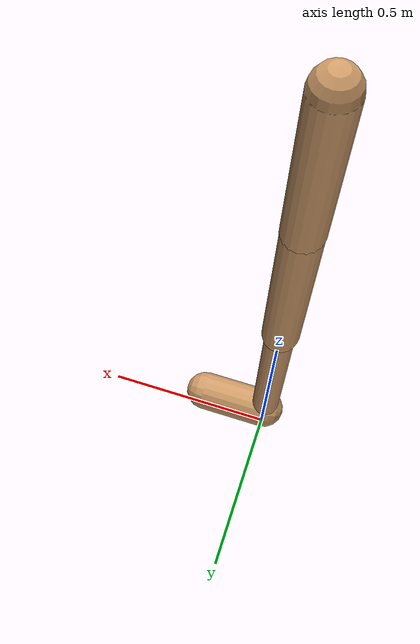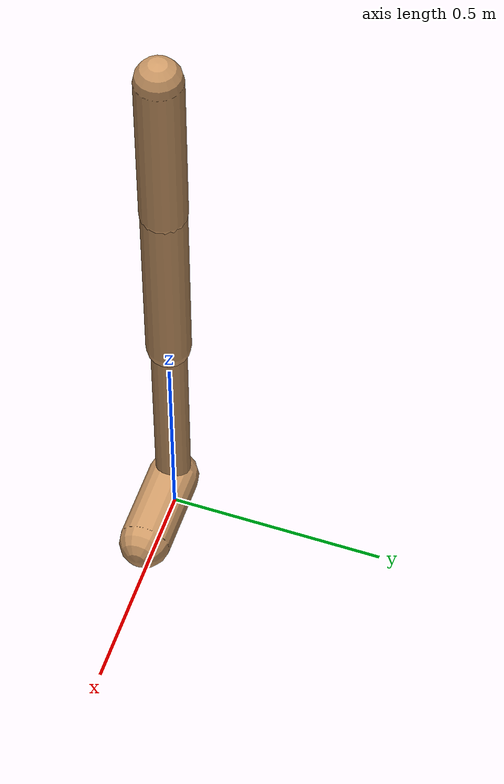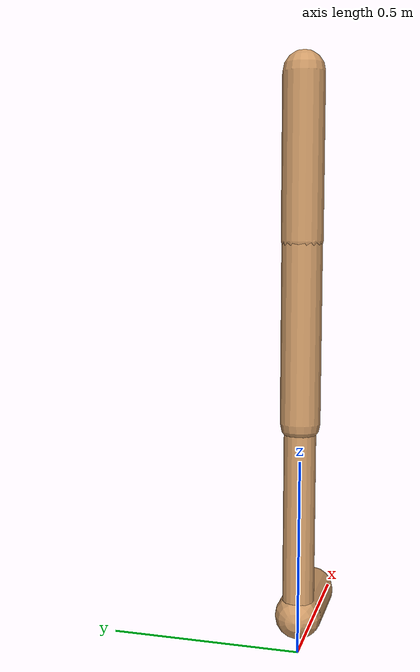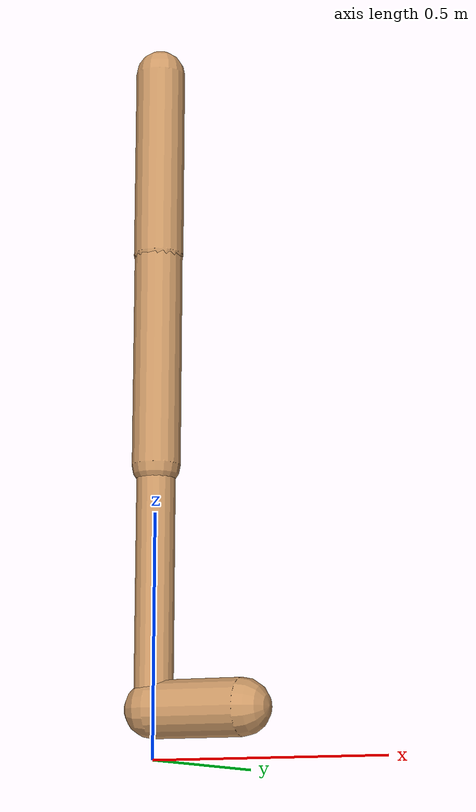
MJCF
<mujoco model="walker2d">
  <compiler angle="degree" coordinate="global" inertiafromgeom="true" />
  <default>
    <joint armature="0.01" damping=".1" limited="true" />
    <geom conaffinity="0" condim="3" contype="1" density="1000" friction="0.8 .1 .1" rgba="0.8 0.6 .4 1" />
  </default>
  <option integrator="RK4" timestep="0.002" />
  <worldbody>

    <body name="torso" pos="0 0 3.613382690888734e-05">
      <joint armature="0" axis="1 0 0" damping="0" limited="false" name="ignorex" pos="0 0 0" stiffness="0" type="slide" />
      <joint armature="0" axis="0 0 1" damping="0" limited="false" name="ignorez" pos="0 0 0" ref="1.25" stiffness="0" type="slide" />
      <joint armature="0" axis="0 1 0" damping="0" limited="false" name="ignorey" pos="0 0 0" stiffness="0" type="hinge" />
      <geom fromto="0 0 1.45 0 0 1.05" name="torso_geom" size="0.051927356604581726" type="capsule" />
      <body name="thigh">
        <joint axis="0 -1 0" name="thigh_joint" pos="0 0 1.05" range="-150 0" type="hinge" />
        <geom fromto="0.0 0.0 1.05 0.0 0.0 0.5999828839767274" name="thigh_geom" size="0.0503939801943764" type="capsule" />
        <body name="leg" pos="0.0 0.0 -1.7116023272589764e-05">
          <joint axis="0 -1 0" name="leg_joint" pos="0 0 0.6" range="-150 0" type="hinge" />
          <geom fromto="0.0 0.0 0.6 0.0 0.0 0.09998098219636375" name="leg_geom" size="0.040315184155501116" type="capsule" />
          <body name="foot" pos="0.0 0.0 -1.901780363625094e-05">
            <joint axis="0 -1 0" name="foot_joint" pos="0 0 0.1" range="-45 45" type="hinge" />
            <geom fromto="0.0 0.0 0.1 0.1947791074828623 0.0 0.1" name="foot_geom" size="0.05893972001232414" type="capsule" />
          </body>
        </body>
      </body>

      <body name="thigh_left">
        <joint axis="0 -1 0" name="thigh_left_joint" pos="0 0 1.05" range="-150 0" type="hinge" />
        <geom fromto="0.0 0.0 1.05 0.0 0.0 0.5999828839767274" name="thigh_left_geom" rgba=".7 .3 .6 1" size="0.0503939801943764" type="capsule" />
        <body name="leg_left" pos="0.0 0.0 -1.7116023272589764e-05">
          <joint axis="0 -1 0" name="leg_left_joint" pos="0 0 0.6" range="-150 0" type="hinge" />
          <geom fromto="0.0 0.0 0.6 0.0 0.0 0.09998098219636375" name="leg_left_geom" rgba=".7 .3 .6 1" size="0.040315184155501116" type="capsule" />
          <body name="foot_left" pos="0.0 0.0 -1.901780363625094e-05">
            <joint axis="0 -1 0" name="foot_left_joint" pos="0 0 0.1" range="-45 45" type="hinge" />
            <geom fromto="0.0 0.0 0.1 0.1947791074828623 0.0 0.1" name="foot_left_geom" rgba=".7 .3 .6 1" size="0.05893972001232414" type="capsule" />
          </body>
        </body>
      </body>
    </body>
  </worldbody>
  <actuator>

    <motor ctrllimited="true" ctrlrange="-1.0 1.0" gear="100" joint="thigh_joint" />
    <motor ctrllimited="true" ctrlrange="-1.0 1.0" gear="100" joint="leg_joint" />
    <motor ctrllimited="true" ctrlrange="-1.0 1.0" gear="100" joint="foot_joint" />
    <motor ctrllimited="true" ctrlrange="-1.0 1.0" gear="100" joint="thigh_left_joint" />
    <motor ctrllimited="true" ctrlrange="-1.0 1.0" gear="100" joint="leg_left_joint" />
    <motor ctrllimited="true" ctrlrange="-1.0 1.0" gear="100" joint="foot_left_joint" />

  </actuator>
</mujoco>
